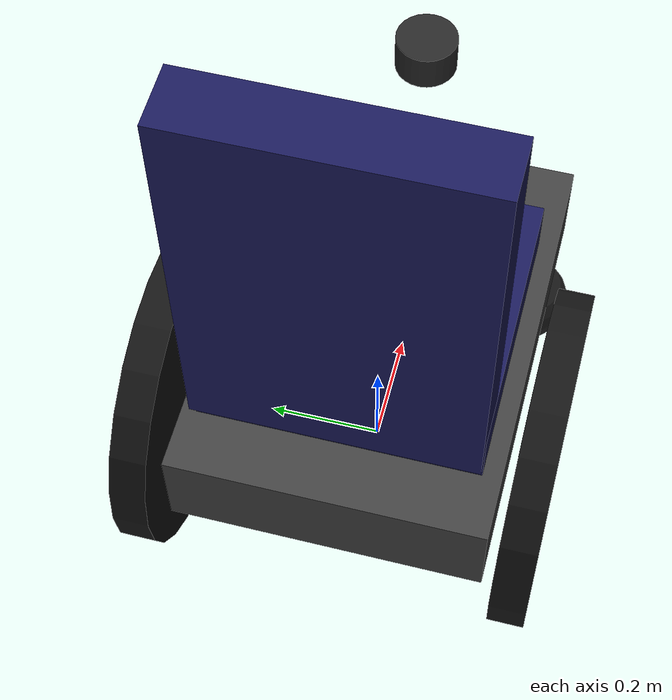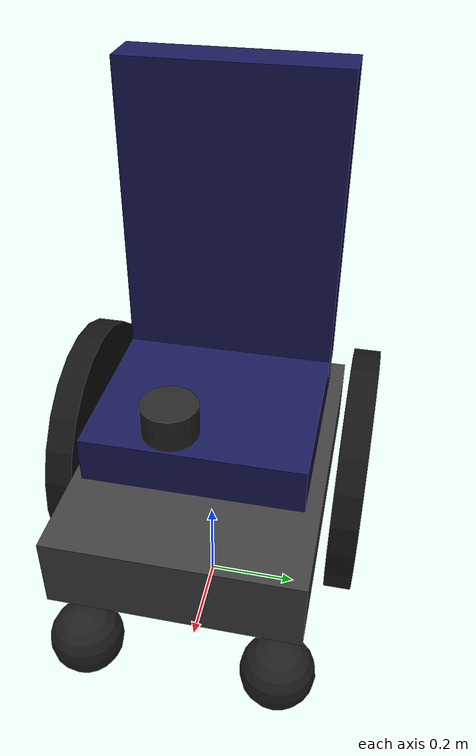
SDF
<?xml version="1.0"?>

<sdf version="1.10">
  <model name="wheelchair">

    <!--
      좌표 기준
      x축: 휠체어 앞쪽
      y축: 휠체어 왼쪽
      z축: 위쪽

      모델 원점:
      지면 z = 0
    -->

    <pose>0 0 0 0 0 0</pose>

    <!-- 본체                                               -->

    <link name="base_link">

      <inertial>
        <pose>0 0 0.20 0 0 0</pose>

        <mass>40.0</mass>

        <inertia>
          <ixx>2.0</ixx>
          <iyy>2.5</iyy>
          <izz>2.5</izz>
          <ixy>0.0</ixy>
          <ixz>0.0</ixz>
          <iyz>0.0</iyz>
        </inertia>
      </inertial>

      <!-- 아래쪽 섀시 -->

      <collision name="base_collision">
        <pose>0 0 0.33 0 0 0</pose>

        <geometry>
          <box>
            <size>0.72 0.52 0.16</size>
          </box>
        </geometry>
      </collision>

      <visual name="base_visual">
        <pose>0 0 0.33 0 0 0</pose>

        <geometry>
          <box>
            <size>0.72 0.52 0.16</size>
          </box>
        </geometry>

        <material>
          <ambient>0.12 0.12 0.12 1</ambient>
          <diffuse>0.25 0.25 0.25 1</diffuse>
          <specular>0.10 0.10 0.10 1</specular>
        </material>
      </visual>

      <!-- 좌석 -->

      <collision name="seat_collision">
        <pose>-0.04 0 0.48 0 0 0</pose>

        <geometry>
          <box>
            <size>0.45 0.46 0.10</size>
          </box>
        </geometry>
      </collision>

      <visual name="seat_visual">
        <pose>-0.04 0 0.48 0 0 0</pose>

        <geometry>
          <box>
            <size>0.45 0.46 0.10</size>
          </box>
        </geometry>

        <material>
          <ambient>0.05 0.05 0.12 1</ambient>
          <diffuse>0.10 0.10 0.35 1</diffuse>
          <specular>0.08 0.08 0.08 1</specular>
        </material>
      </visual>

      <!-- 등받이 -->

      <collision name="backrest_collision">
        <pose>-0.24 0 0.82 0 0 0</pose>

        <geometry>
          <box>
            <size>0.10 0.46 0.68</size>
          </box>
        </geometry>
      </collision>

      <visual name="backrest_visual">
        <pose>-0.24 0 0.82 0 0 0</pose>

        <geometry>
          <box>
            <size>0.10 0.46 0.68</size>
          </box>
        </geometry>

        <material>
          <ambient>0.05 0.05 0.12 1</ambient>
          <diffuse>0.10 0.10 0.35 1</diffuse>
          <specular>0.08 0.08 0.08 1</specular>
        </material>
      </visual>

    </link>

    <!-- 왼쪽 구동바퀴                                     -->

    <link name="left_drive_wheel">

      <!-- cylinder의 local z축을 모델 y축에 맞춤 -->
      <pose>-0.13 0.31 0.28 1.5708 0 0</pose>

      <inertial>
        <mass>6.0</mass>

        <inertia>
          <ixx>0.119</ixx>
          <iyy>0.235</iyy>
          <izz>0.119</izz>
          <ixy>0.0</ixy>
          <ixz>0.0</ixz>
          <iyz>0.0</iyz>
        </inertia>
      </inertial>

      <collision name="left_wheel_collision">
        <geometry>
          <cylinder>
            <radius>0.28</radius>
            <length>0.06</length>
          </cylinder>
        </geometry>

        <surface>
          <friction>
            <ode>
              <mu>1.0</mu>
              <mu2>1.0</mu2>
            </ode>
          </friction>
        </surface>
      </collision>

      <visual name="left_wheel_visual">
        <geometry>
          <cylinder>
            <radius>0.28</radius>
            <length>0.06</length>
          </cylinder>
        </geometry>

        <material>
          <ambient>0.03 0.03 0.03 1</ambient>
          <diffuse>0.08 0.08 0.08 1</diffuse>
          <specular>0.02 0.02 0.02 1</specular>
        </material>
      </visual>

    </link>

    <joint name="left_drive_wheel_joint" type="revolute">

      <parent>base_link</parent>
      <child>left_drive_wheel</child>

      <axis>
        <xyz expressed_in="__model__">0 1 0</xyz>

        <limit>
          <lower>-1e16</lower>
          <upper>1e16</upper>
          <effort>100</effort>
          <velocity>20</velocity>
        </limit>

        <dynamics>
          <damping>0.1</damping>
          <friction>0.0</friction>
        </dynamics>
      </axis>

    </joint>

    <!-- 오른쪽 구동바퀴                                   -->

    <link name="right_drive_wheel">

      <pose>-0.13 -0.31 0.28 1.5708 0 0</pose>

      <inertial>
        <mass>6.0</mass>

        <inertia>
          <ixx>0.119</ixx>
          <iyy>0.235</iyy>
          <izz>0.119</izz>
          <ixy>0.0</ixy>
          <ixz>0.0</ixz>
          <iyz>0.0</iyz>
        </inertia>
      </inertial>

      <collision name="right_wheel_collision">
        <geometry>
          <cylinder>
            <radius>0.28</radius>
            <length>0.06</length>
          </cylinder>
        </geometry>

        <surface>
          <friction>
            <ode>
              <mu>1.0</mu>
              <mu2>1.0</mu2>
            </ode>
          </friction>
        </surface>
      </collision>

      <visual name="right_wheel_visual">
        <geometry>
          <cylinder>
            <radius>0.28</radius>
            <length>0.06</length>
          </cylinder>
        </geometry>

        <material>
          <ambient>0.03 0.03 0.03 1</ambient>
          <diffuse>0.08 0.08 0.08 1</diffuse>
          <specular>0.02 0.02 0.02 1</specular>
        </material>
      </visual>

    </link>

    <joint name="right_drive_wheel_joint" type="revolute">

      <parent>base_link</parent>
      <child>right_drive_wheel</child>

      <axis>
        <xyz expressed_in="__model__">0 1 0</xyz>

        <limit>
          <lower>-1e16</lower>
          <upper>1e16</upper>
          <effort>100</effort>
          <velocity>20</velocity>
        </limit>

        <dynamics>
          <damping>0.1</damping>
          <friction>0.0</friction>
        </dynamics>
      </axis>

    </joint>

    <!-- 앞쪽 왼쪽 캐스터                                  -->

    <link name="front_left_caster">

      <pose>0.31 0.21 0.08 0 0 0</pose>

      <inertial>
        <mass>1.0</mass>

        <inertia>
          <ixx>0.003</ixx>
          <iyy>0.003</iyy>
          <izz>0.003</izz>
          <ixy>0.0</ixy>
          <ixz>0.0</ixz>
          <iyz>0.0</iyz>
        </inertia>
      </inertial>

      <collision name="front_left_caster_collision">
        <geometry>
          <sphere>
            <radius>0.08</radius>
          </sphere>
        </geometry>

        <surface>
          <friction>
            <ode>
              <mu>0.1</mu>
              <mu2>0.1</mu2>
            </ode>
          </friction>
        </surface>
      </collision>

      <visual name="front_left_caster_visual">
        <geometry>
          <sphere>
            <radius>0.08</radius>
          </sphere>
        </geometry>

        <material>
          <ambient>0.05 0.05 0.05 1</ambient>
          <diffuse>0.12 0.12 0.12 1</diffuse>
        </material>
      </visual>

    </link>

    <joint name="front_left_caster_joint" type="fixed">
      <parent>base_link</parent>
      <child>front_left_caster</child>
    </joint>

    <!-- 앞쪽 오른쪽 캐스터                                -->

    <link name="front_right_caster">

      <pose>0.31 -0.21 0.08 0 0 0</pose>

      <inertial>
        <mass>1.0</mass>

        <inertia>
          <ixx>0.003</ixx>
          <iyy>0.003</iyy>
          <izz>0.003</izz>
          <ixy>0.0</ixy>
          <ixz>0.0</ixz>
          <iyz>0.0</iyz>
        </inertia>
      </inertial>

      <collision name="front_right_caster_collision">
        <geometry>
          <sphere>
            <radius>0.08</radius>
          </sphere>
        </geometry>

        <surface>
          <friction>
            <ode>
              <mu>0.1</mu>
              <mu2>0.1</mu2>
            </ode>
          </friction>
        </surface>
      </collision>

      <visual name="front_right_caster_visual">
        <geometry>
          <sphere>
            <radius>0.08</radius>
          </sphere>
        </geometry>

        <material>
          <ambient>0.05 0.05 0.05 1</ambient>
          <diffuse>0.12 0.12 0.12 1</diffuse>
        </material>
      </visual>

    </link>

    <joint name="front_right_caster_joint" type="fixed">
      <parent>base_link</parent>
      <child>front_right_caster</child>
    </joint>

    <!-- 2D LiDAR                                           -->

    <link name="lidar_link">

      <!-- 휠체어 앞쪽 상단 -->
      <pose>0.30 0 0.72 0 0 0</pose>

      <inertial>
        <mass>0.5</mass>

        <inertia>
          <ixx>0.001</ixx>
          <iyy>0.001</iyy>
          <izz>0.001</izz>
          <ixy>0.0</ixy>
          <ixz>0.0</ixz>
          <iyz>0.0</iyz>
        </inertia>
      </inertial>

      <collision name="lidar_collision">
        <geometry>
          <cylinder>
            <radius>0.05</radius>
            <length>0.06</length>
          </cylinder>
        </geometry>
      </collision>

      <visual name="lidar_visual">
        <geometry>
          <cylinder>
            <radius>0.05</radius>
            <length>0.06</length>
          </cylinder>
        </geometry>

        <material>
          <ambient>0.05 0.05 0.05 1</ambient>
          <diffuse>0.15 0.15 0.15 1</diffuse>
          <specular>0.10 0.10 0.10 1</specular>
        </material>
      </visual>

      <sensor name="lidar_sensor" type="gpu_lidar">

        <pose>0 0 0.03 0 0 0</pose>

        <topic>/model/wheelchair/scan</topic>

        <update_rate>10</update_rate>
        <always_on>true</always_on>
        <visualize>true</visualize>

        <lidar>

          <scan>
            <horizontal>
              <samples>720</samples>
              <resolution>1</resolution>
              <min_angle>-3.14159265</min_angle>
              <max_angle>3.14159265</max_angle>
            </horizontal>
          </scan>

          <range>
            <min>0.12</min>
            <max>12.0</max>
            <resolution>0.01</resolution>
          </range>

          <noise>
            <type>gaussian</type>
            <mean>0.0</mean>
            <stddev>0.01</stddev>
          </noise>

        </lidar>

      </sensor>

    </link>

    <joint name="lidar_joint" type="fixed">
      <parent>base_link</parent>
      <child>lidar_link</child>
    </joint>

    <!-- Gazebo DiffDrive                                   -->

    <plugin
      filename="gz-sim-diff-drive-system"
      name="gz::sim::systems::DiffDrive">

      <left_joint>left_drive_wheel_joint</left_joint>
      <right_joint>right_drive_wheel_joint</right_joint>

      <wheel_separation>0.62</wheel_separation>
      <wheel_radius>0.28</wheel_radius>

      <topic>/model/wheelchair/cmd_vel</topic>

      <odom_topic>/model/wheelchair/odometry</odom_topic>
      <tf_topic>/model/wheelchair/tf</tf_topic>

      <frame_id>odom</frame_id>
      <child_frame_id>base_link</child_frame_id>

      <odom_publish_frequency>30</odom_publish_frequency>

      <max_linear_acceleration>1.0</max_linear_acceleration>
      <max_angular_acceleration>2.0</max_angular_acceleration>

    </plugin>

  </model>
</sdf>
